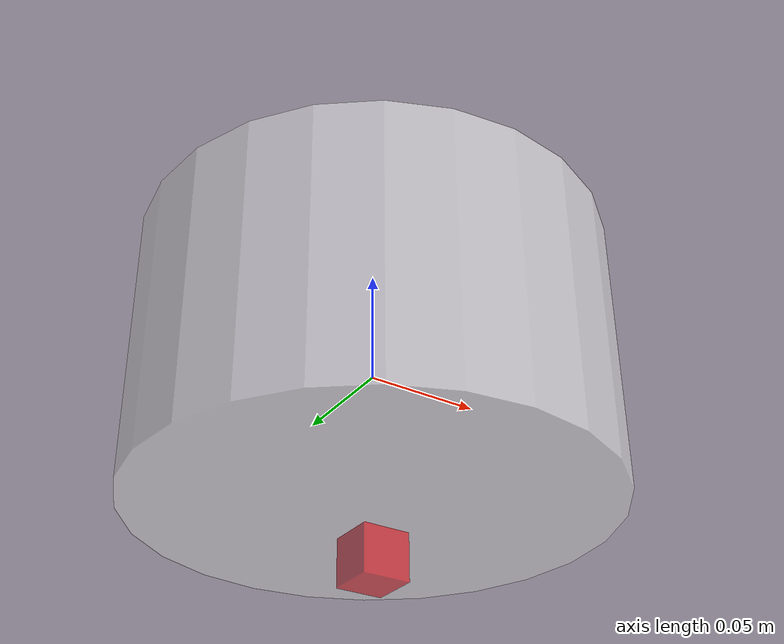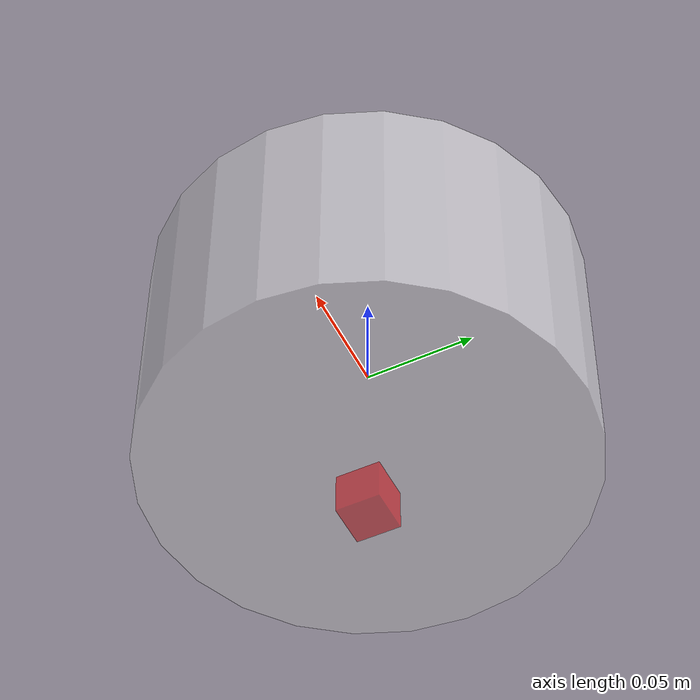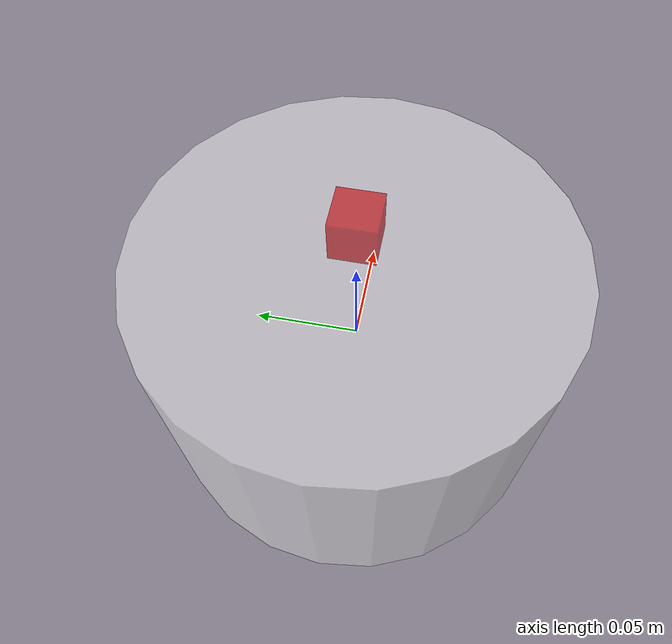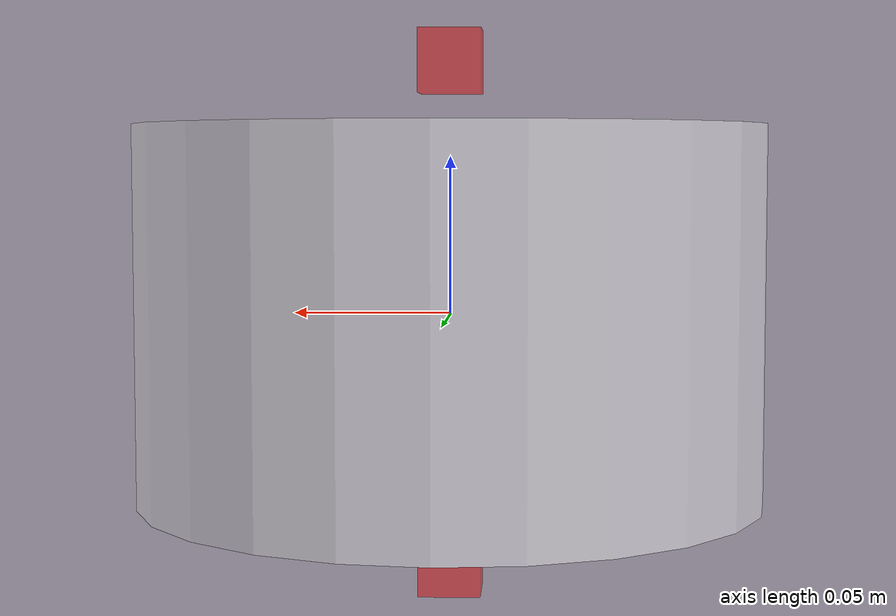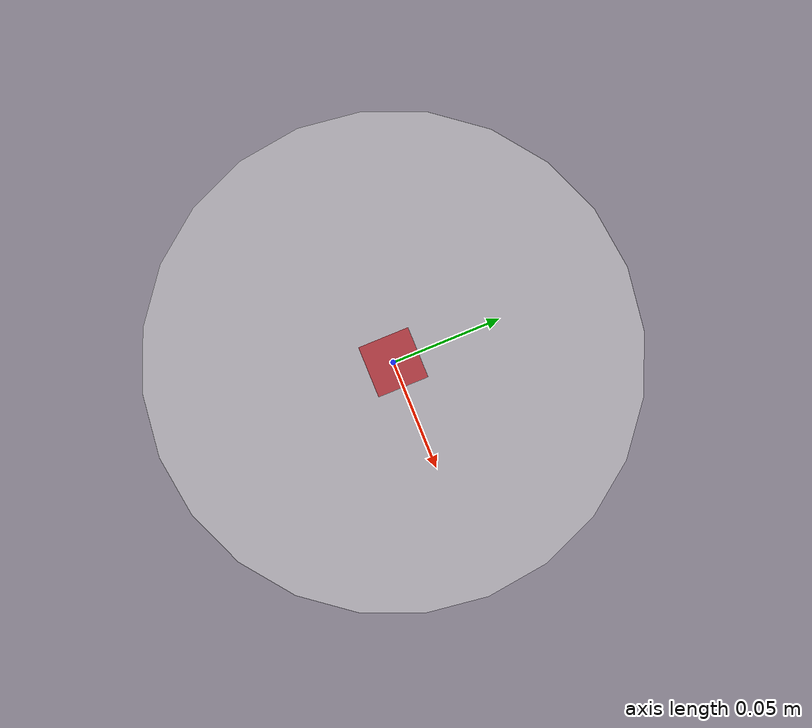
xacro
<?xml version="1.0"?>
<robot xmlns:xacro="http://www.ros.org/wiki/xacro" name="my_robo">
    <!-- 定义 base_link 宏 -->
    <xacro:macro name="base_link" params="length radius">
        <!-- 机器人的身体部分 -->
        <link name="base_link">
            <!-- 部件的外观描述 -->
            <visual>
                <!-- 沿着自己几何中心的偏移旋转量 -->
                <origin xyz="0.0 0.0 0.0" rpy="0.0 0.0 0.0"/>
                <!-- 几何形状 -->
                <geometry>
                    <!-- 圆柱体 半径0.1 高度 0.12 -->
                    <cylinder radius="${radius}" length="${length}"/>
                </geometry>
                <!-- 材质 颜色描述 -->
                <material name="white">
                    <!-- 设置透明为 0.5 -->
                    <color rgba="1.0 1.0 1.0 0.5"/>
                </material>
            </visual>
        </link>
    </xacro:macro>

    <!-- 定义 imu_link 宏 -->
    <xacro:macro name="imu_link" params="imu_name xyz">
        <!-- 机器人IMU 部件 惯性测量单元传感器 -->
        <link name="${imu_name}">
            <!-- 部件的外观描述 -->
            <visual>
                <!-- 沿着自己几何中心的偏移旋转量 -->
                <origin xyz="0.0 0.0 0.0" rpy="0.0 0.0 0.0"/>
                <!-- 几何形状 -->
                <geometry>
                    <!-- box 自己自动生成的 正方体 -->
                    <box size="0.02 0.02 0.02"/>
                </geometry>
                <!-- 材质 颜色描述 -->
                <material name="red">
                    <!-- 设置透明为 0.5 -->
                    <color rgba="1.0 0.0 0.0 0.5"/>
                </material>
            </visual>
        </link>
        <!-- 机器人的关节 用于组合机器人的部件 -->
        <joint name="${imu_name}_joint" type="fixed">
            <parent link="base_link"/>
            <child link="${imu_name}"/>
            <origin xyz="${xyz}" rpy="0.0 0.0 0.0"/>
        </joint>
    </xacro:macro>

    <!-- 调用 base_link 宏 -->
    <xacro:base_link length="0.12" radius="0.1"/>

    <!-- 调用 imu_link 宏 -->
    <xacro:imu_link imu_name="imu_up" xyz="0 0 0.03"/>
    <xacro:imu_link imu_name="imu_down" xyz="0 0 -0.03"/>
    <xacro:imu_link imu_name="imu_up2" xyz="0 0 0.08"/>
    <xacro:imu_link imu_name="imu_down2" xyz="0 0 -0.08"/>
</robot>
